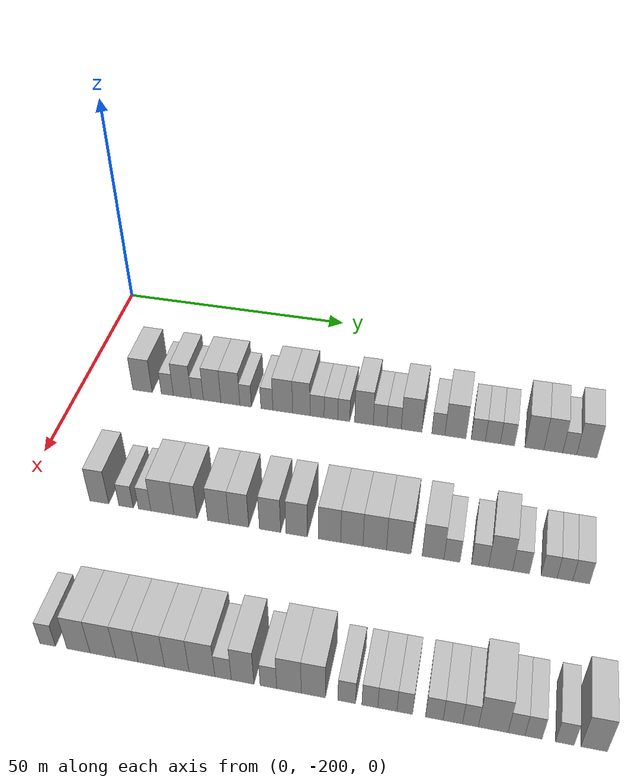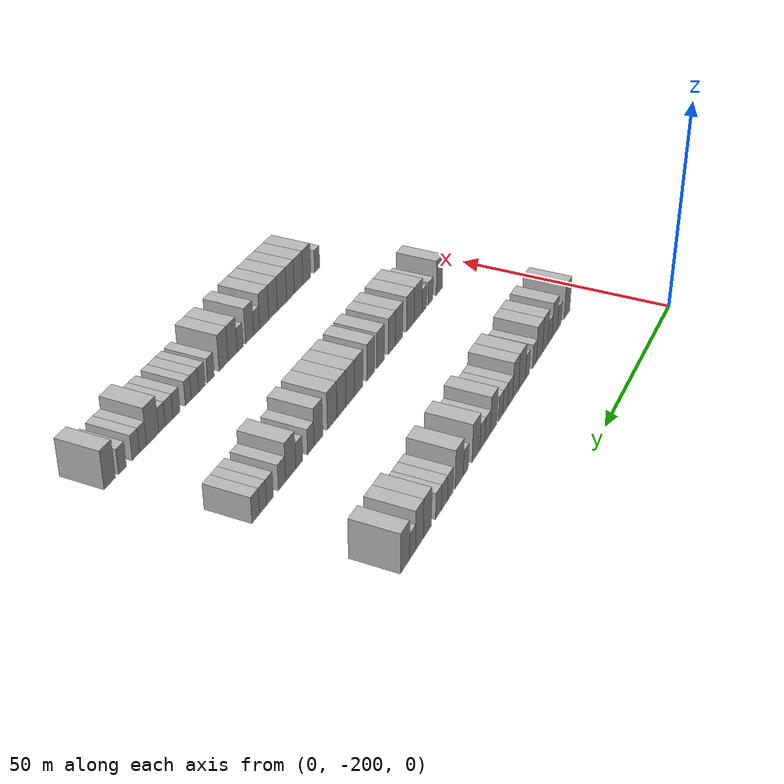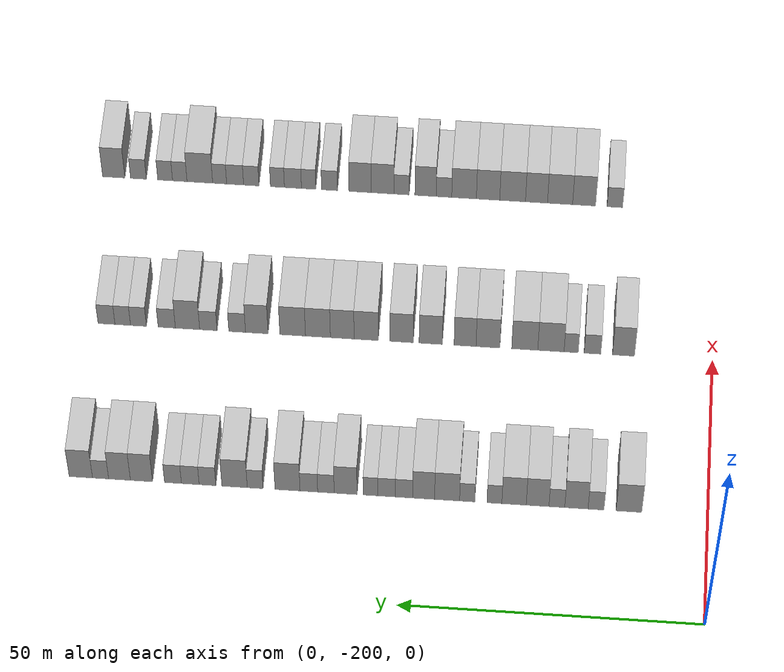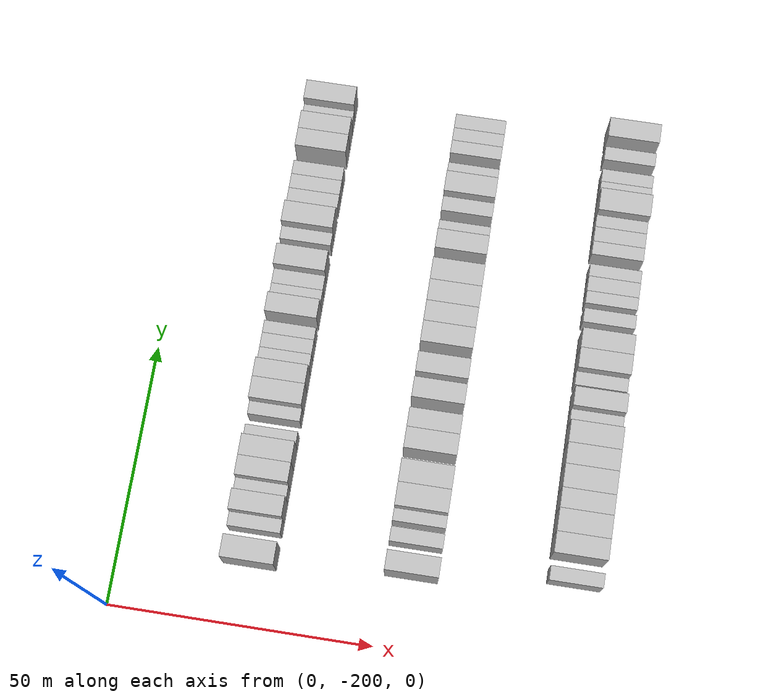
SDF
<sdf version="1.6">
 <world name="default">
  <model name="building_23">
   <static>1</static>
   <pose>25.0000 -186.9308 0 0.000000 0.000000 0.000000</pose>
   <link name="link">
    <pose>0 0 4.50 0 0 0</pose>
    <collision name="collision"><geometry><box><size>10.0000 4.2235 9.0000</size></box></geometry></collision>
    <visual name="visual">
     <cast_shadows>0</cast_shadows>
     <geometry><box><size>10.0000 4.2235 9.0000</size></box></geometry>
     <material>
      <script>
       <uri>model://HANNAS_wall/materials/scripts</uri>
       <uri>model://HANNAS_wall/materials/textures</uri>
       <name>vrc/HANNAS_wall</name>
      </script>
     </material>
    </visual>
   </link>
  </model>
  <model name="building_24">
   <static>1</static>
   <pose>25.0000 -181.5010 0 0.000000 0.000000 0.000000</pose>
   <link name="link">
    <pose>0 0 3.00 0 0 0</pose>
    <collision name="collision"><geometry><box><size>10.0000 2.6361 6.0000</size></box></geometry></collision>
    <visual name="visual">
     <cast_shadows>0</cast_shadows>
     <geometry><box><size>10.0000 2.6361 6.0000</size></box></geometry>
     <material>
      <script>
       <uri>model://HANNAS_wall/materials/scripts</uri>
       <uri>model://HANNAS_wall/materials/textures</uri>
       <name>vrc/HANNAS_wall</name>
      </script>
     </material>
    </visual>
   </link>
  </model>
  <model name="building_25">
   <static>1</static>
   <pose>25.0000 -178.2582 0 0.000000 0.000000 0.000000</pose>
   <link name="link">
    <pose>0 0 4.50 0 0 0</pose>
    <collision name="collision"><geometry><box><size>10.0000 3.8495 9.0000</size></box></geometry></collision>
    <visual name="visual">
     <cast_shadows>0</cast_shadows>
     <geometry><box><size>10.0000 3.8495 9.0000</size></box></geometry>
     <material>
      <script>
       <uri>model://HANNAS_wall/materials/scripts</uri>
       <uri>model://HANNAS_wall/materials/textures</uri>
       <name>vrc/HANNAS_wall</name>
      </script>
     </material>
    </visual>
   </link>
  </model>
  <model name="building_26">
   <static>1</static>
   <pose>25.0000 -175.0276 0 0.000000 0.000000 0.000000</pose>
   <link name="link">
    <pose>0 0 3.00 0 0 0</pose>
    <collision name="collision"><geometry><box><size>10.0000 2.6116 6.0000</size></box></geometry></collision>
    <visual name="visual">
     <cast_shadows>0</cast_shadows>
     <geometry><box><size>10.0000 2.6116 6.0000</size></box></geometry>
     <material>
      <script>
       <uri>model://HANNAS_wall/materials/scripts</uri>
       <uri>model://HANNAS_wall/materials/textures</uri>
       <name>vrc/HANNAS_wall</name>
      </script>
     </material>
    </visual>
   </link>
  </model>
  <model name="building_27">
   <static>1</static>
   <pose>25.0000 -171.8436 0 0.000000 0.000000 0.000000</pose>
   <link name="link">
    <pose>0 0 4.50 0 0 0</pose>
    <collision name="collision"><geometry><box><size>10.0000 3.7565 9.0000</size></box></geometry></collision>
    <visual name="visual">
     <cast_shadows>0</cast_shadows>
     <geometry><box><size>10.0000 3.7565 9.0000</size></box></geometry>
     <material>
      <script>
       <uri>model://HANNAS_wall/materials/scripts</uri>
       <uri>model://HANNAS_wall/materials/textures</uri>
       <name>vrc/HANNAS_wall</name>
      </script>
     </material>
    </visual>
   </link>
  </model>
  <model name="building_28">
   <static>1</static>
   <pose>25.0000 -167.9490 0 0.000000 0.000000 0.000000</pose>
   <link name="link">
    <pose>0 0 4.50 0 0 0</pose>
    <collision name="collision"><geometry><box><size>10.0000 4.0327 9.0000</size></box></geometry></collision>
    <visual name="visual">
     <cast_shadows>0</cast_shadows>
     <geometry><box><size>10.0000 4.0327 9.0000</size></box></geometry>
     <material>
      <script>
       <uri>model://HANNAS_wall/materials/scripts</uri>
       <uri>model://HANNAS_wall/materials/textures</uri>
       <name>vrc/HANNAS_wall</name>
      </script>
     </material>
    </visual>
   </link>
  </model>
  <model name="building_29">
   <static>1</static>
   <pose>25.0000 -164.7011 0 0.000000 0.000000 0.000000</pose>
   <link name="link">
    <pose>0 0 3.00 0 0 0</pose>
    <collision name="collision"><geometry><box><size>10.0000 2.4632 6.0000</size></box></geometry></collision>
    <visual name="visual">
     <cast_shadows>0</cast_shadows>
     <geometry><box><size>10.0000 2.4632 6.0000</size></box></geometry>
     <material>
      <script>
       <uri>model://HANNAS_wall/materials/scripts</uri>
       <uri>model://HANNAS_wall/materials/textures</uri>
       <name>vrc/HANNAS_wall</name>
      </script>
     </material>
    </visual>
   </link>
  </model>
  <model name="building_30">
   <static>1</static>
   <pose>25.0000 -160.2029 0 0.000000 0.000000 0.000000</pose>
   <link name="link">
    <pose>0 0 3.00 0 0 0</pose>
    <collision name="collision"><geometry><box><size>10.0000 2.5332 6.0000</size></box></geometry></collision>
    <visual name="visual">
     <cast_shadows>0</cast_shadows>
     <geometry><box><size>10.0000 2.5332 6.0000</size></box></geometry>
     <material>
      <script>
       <uri>model://HANNAS_wall/materials/scripts</uri>
       <uri>model://HANNAS_wall/materials/textures</uri>
       <name>vrc/HANNAS_wall</name>
      </script>
     </material>
    </visual>
   </link>
  </model>
  <model name="building_31">
   <static>1</static>
   <pose>25.0000 -156.8701 0 0.000000 0.000000 0.000000</pose>
   <link name="link">
    <pose>0 0 4.50 0 0 0</pose>
    <collision name="collision"><geometry><box><size>10.0000 4.1325 9.0000</size></box></geometry></collision>
    <visual name="visual">
     <cast_shadows>0</cast_shadows>
     <geometry><box><size>10.0000 4.1325 9.0000</size></box></geometry>
     <material>
      <script>
       <uri>model://HANNAS_wall/materials/scripts</uri>
       <uri>model://HANNAS_wall/materials/textures</uri>
       <name>vrc/HANNAS_wall</name>
      </script>
     </material>
    </visual>
   </link>
  </model>
  <model name="building_32">
   <static>1</static>
   <pose>25.0000 -152.9839 0 0.000000 0.000000 0.000000</pose>
   <link name="link">
    <pose>0 0 4.50 0 0 0</pose>
    <collision name="collision"><geometry><box><size>10.0000 3.6400 9.0000</size></box></geometry></collision>
    <visual name="visual">
     <cast_shadows>0</cast_shadows>
     <geometry><box><size>10.0000 3.6400 9.0000</size></box></geometry>
     <material>
      <script>
       <uri>model://HANNAS_wall/materials/scripts</uri>
       <uri>model://HANNAS_wall/materials/textures</uri>
       <name>vrc/HANNAS_wall</name>
      </script>
     </material>
    </visual>
   </link>
  </model>
  <model name="building_33">
   <static>1</static>
   <pose>25.0000 -149.7159 0 0.000000 0.000000 0.000000</pose>
   <link name="link">
    <pose>0 0 3.00 0 0 0</pose>
    <collision name="collision"><geometry><box><size>10.0000 2.8959 6.0000</size></box></geometry></collision>
    <visual name="visual">
     <cast_shadows>0</cast_shadows>
     <geometry><box><size>10.0000 2.8959 6.0000</size></box></geometry>
     <material>
      <script>
       <uri>model://HANNAS_wall/materials/scripts</uri>
       <uri>model://HANNAS_wall/materials/textures</uri>
       <name>vrc/HANNAS_wall</name>
      </script>
     </material>
    </visual>
   </link>
  </model>
  <model name="building_34">
   <static>1</static>
   <pose>25.0000 -146.8336 0 0.000000 0.000000 0.000000</pose>
   <link name="link">
    <pose>0 0 3.00 0 0 0</pose>
    <collision name="collision"><geometry><box><size>10.0000 2.8687 6.0000</size></box></geometry></collision>
    <visual name="visual">
     <cast_shadows>0</cast_shadows>
     <geometry><box><size>10.0000 2.8687 6.0000</size></box></geometry>
     <material>
      <script>
       <uri>model://HANNAS_wall/materials/scripts</uri>
       <uri>model://HANNAS_wall/materials/textures</uri>
       <name>vrc/HANNAS_wall</name>
      </script>
     </material>
    </visual>
   </link>
  </model>
  <model name="building_35">
   <static>1</static>
   <pose>25.0000 -144.1775 0 0.000000 0.000000 0.000000</pose>
   <link name="link">
    <pose>0 0 3.00 0 0 0</pose>
    <collision name="collision"><geometry><box><size>10.0000 2.4435 6.0000</size></box></geometry></collision>
    <visual name="visual">
     <cast_shadows>0</cast_shadows>
     <geometry><box><size>10.0000 2.4435 6.0000</size></box></geometry>
     <material>
      <script>
       <uri>model://HANNAS_wall/materials/scripts</uri>
       <uri>model://HANNAS_wall/materials/textures</uri>
       <name>vrc/HANNAS_wall</name>
      </script>
     </material>
    </visual>
   </link>
  </model>
  <model name="building_36">
   <static>1</static>
   <pose>25.0000 -140.0519 0 0.000000 0.000000 0.000000</pose>
   <link name="link">
    <pose>0 0 4.50 0 0 0</pose>
    <collision name="collision"><geometry><box><size>10.0000 3.8077 9.0000</size></box></geometry></collision>
    <visual name="visual">
     <cast_shadows>0</cast_shadows>
     <geometry><box><size>10.0000 3.8077 9.0000</size></box></geometry>
     <material>
      <script>
       <uri>model://HANNAS_wall/materials/scripts</uri>
       <uri>model://HANNAS_wall/materials/textures</uri>
       <name>vrc/HANNAS_wall</name>
      </script>
     </material>
    </visual>
   </link>
  </model>
  <model name="building_37">
   <static>1</static>
   <pose>25.0000 -136.7736 0 0.000000 0.000000 0.000000</pose>
   <link name="link">
    <pose>0 0 3.00 0 0 0</pose>
    <collision name="collision"><geometry><box><size>10.0000 2.7491 6.0000</size></box></geometry></collision>
    <visual name="visual">
     <cast_shadows>0</cast_shadows>
     <geometry><box><size>10.0000 2.7491 6.0000</size></box></geometry>
     <material>
      <script>
       <uri>model://HANNAS_wall/materials/scripts</uri>
       <uri>model://HANNAS_wall/materials/textures</uri>
       <name>vrc/HANNAS_wall</name>
      </script>
     </material>
    </visual>
   </link>
  </model>
  <model name="building_38">
   <static>1</static>
   <pose>25.0000 -133.9330 0 0.000000 0.000000 0.000000</pose>
   <link name="link">
    <pose>0 0 3.00 0 0 0</pose>
    <collision name="collision"><geometry><box><size>10.0000 2.9320 6.0000</size></box></geometry></collision>
    <visual name="visual">
     <cast_shadows>0</cast_shadows>
     <geometry><box><size>10.0000 2.9320 6.0000</size></box></geometry>
     <material>
      <script>
       <uri>model://HANNAS_wall/materials/scripts</uri>
       <uri>model://HANNAS_wall/materials/textures</uri>
       <name>vrc/HANNAS_wall</name>
      </script>
     </material>
    </visual>
   </link>
  </model>
  <model name="building_39">
   <static>1</static>
   <pose>25.0000 -130.3901 0 0.000000 0.000000 0.000000</pose>
   <link name="link">
    <pose>0 0 4.50 0 0 0</pose>
    <collision name="collision"><geometry><box><size>10.0000 4.1539 9.0000</size></box></geometry></collision>
    <visual name="visual">
     <cast_shadows>0</cast_shadows>
     <geometry><box><size>10.0000 4.1539 9.0000</size></box></geometry>
     <material>
      <script>
       <uri>model://HANNAS_wall/materials/scripts</uri>
       <uri>model://HANNAS_wall/materials/textures</uri>
       <name>vrc/HANNAS_wall</name>
      </script>
     </material>
    </visual>
   </link>
  </model>
  <model name="building_40">
   <static>1</static>
   <pose>25.0000 -125.0064 0 0.000000 0.000000 0.000000</pose>
   <link name="link">
    <pose>0 0 3.00 0 0 0</pose>
    <collision name="collision"><geometry><box><size>10.0000 2.6134 6.0000</size></box></geometry></collision>
    <visual name="visual">
     <cast_shadows>0</cast_shadows>
     <geometry><box><size>10.0000 2.6134 6.0000</size></box></geometry>
     <material>
      <script>
       <uri>model://HANNAS_wall/materials/scripts</uri>
       <uri>model://HANNAS_wall/materials/textures</uri>
       <name>vrc/HANNAS_wall</name>
      </script>
     </material>
    </visual>
   </link>
  </model>
  <model name="building_41">
   <static>1</static>
   <pose>25.0000 -121.5909 0 0.000000 0.000000 0.000000</pose>
   <link name="link">
    <pose>0 0 4.50 0 0 0</pose>
    <collision name="collision"><geometry><box><size>10.0000 4.2176 9.0000</size></box></geometry></collision>
    <visual name="visual">
     <cast_shadows>0</cast_shadows>
     <geometry><box><size>10.0000 4.2176 9.0000</size></box></geometry>
     <material>
      <script>
       <uri>model://HANNAS_wall/materials/scripts</uri>
       <uri>model://HANNAS_wall/materials/textures</uri>
       <name>vrc/HANNAS_wall</name>
      </script>
     </material>
    </visual>
   </link>
  </model>
  <model name="building_42">
   <static>1</static>
   <pose>25.0000 -117.0880 0 0.000000 0.000000 0.000000</pose>
   <link name="link">
    <pose>0 0 3.00 0 0 0</pose>
    <collision name="collision"><geometry><box><size>10.0000 2.7881 6.0000</size></box></geometry></collision>
    <visual name="visual">
     <cast_shadows>0</cast_shadows>
     <geometry><box><size>10.0000 2.7881 6.0000</size></box></geometry>
     <material>
      <script>
       <uri>model://HANNAS_wall/materials/scripts</uri>
       <uri>model://HANNAS_wall/materials/textures</uri>
       <name>vrc/HANNAS_wall</name>
      </script>
     </material>
    </visual>
   </link>
  </model>
  <model name="building_43">
   <static>1</static>
   <pose>25.0000 -114.2157 0 0.000000 0.000000 0.000000</pose>
   <link name="link">
    <pose>0 0 3.00 0 0 0</pose>
    <collision name="collision"><geometry><box><size>10.0000 2.9565 6.0000</size></box></geometry></collision>
    <visual name="visual">
     <cast_shadows>0</cast_shadows>
     <geometry><box><size>10.0000 2.9565 6.0000</size></box></geometry>
     <material>
      <script>
       <uri>model://HANNAS_wall/materials/scripts</uri>
       <uri>model://HANNAS_wall/materials/textures</uri>
       <name>vrc/HANNAS_wall</name>
      </script>
     </material>
    </visual>
   </link>
  </model>
  <model name="building_44">
   <static>1</static>
   <pose>25.0000 -111.3341 0 0.000000 0.000000 0.000000</pose>
   <link name="link">
    <pose>0 0 3.00 0 0 0</pose>
    <collision name="collision"><geometry><box><size>10.0000 2.8067 6.0000</size></box></geometry></collision>
    <visual name="visual">
     <cast_shadows>0</cast_shadows>
     <geometry><box><size>10.0000 2.8067 6.0000</size></box></geometry>
     <material>
      <script>
       <uri>model://HANNAS_wall/materials/scripts</uri>
       <uri>model://HANNAS_wall/materials/textures</uri>
       <name>vrc/HANNAS_wall</name>
      </script>
     </material>
    </visual>
   </link>
  </model>
  <model name="building_45">
   <static>1</static>
   <pose>25.0000 -106.0838 0 0.000000 0.000000 0.000000</pose>
   <link name="link">
    <pose>0 0 4.50 0 0 0</pose>
    <collision name="collision"><geometry><box><size>10.0000 3.6938 9.0000</size></box></geometry></collision>
    <visual name="visual">
     <cast_shadows>0</cast_shadows>
     <geometry><box><size>10.0000 3.6938 9.0000</size></box></geometry>
     <material>
      <script>
       <uri>model://HANNAS_wall/materials/scripts</uri>
       <uri>model://HANNAS_wall/materials/textures</uri>
       <name>vrc/HANNAS_wall</name>
      </script>
     </material>
    </visual>
   </link>
  </model>
  <model name="building_46">
   <static>1</static>
   <pose>25.0000 -102.4208 0 0.000000 0.000000 0.000000</pose>
   <link name="link">
    <pose>0 0 4.50 0 0 0</pose>
    <collision name="collision"><geometry><box><size>10.0000 3.6322 9.0000</size></box></geometry></collision>
    <visual name="visual">
     <cast_shadows>0</cast_shadows>
     <geometry><box><size>10.0000 3.6322 9.0000</size></box></geometry>
     <material>
      <script>
       <uri>model://HANNAS_wall/materials/scripts</uri>
       <uri>model://HANNAS_wall/materials/textures</uri>
       <name>vrc/HANNAS_wall</name>
      </script>
     </material>
    </visual>
   </link>
  </model>
  <model name="building_47">
   <static>1</static>
   <pose>25.0000 -99.2603 0 0.000000 0.000000 0.000000</pose>
   <link name="link">
    <pose>0 0 3.00 0 0 0</pose>
    <collision name="collision"><geometry><box><size>10.0000 2.6888 6.0000</size></box></geometry></collision>
    <visual name="visual">
     <cast_shadows>0</cast_shadows>
     <geometry><box><size>10.0000 2.6888 6.0000</size></box></geometry>
     <material>
      <script>
       <uri>model://HANNAS_wall/materials/scripts</uri>
       <uri>model://HANNAS_wall/materials/textures</uri>
       <name>vrc/HANNAS_wall</name>
      </script>
     </material>
    </visual>
   </link>
  </model>
  <model name="building_48">
   <static>1</static>
   <pose>25.0000 -95.9693 0 0.000000 0.000000 0.000000</pose>
   <link name="link">
    <pose>0 0 4.50 0 0 0</pose>
    <collision name="collision"><geometry><box><size>10.0000 3.8932 9.0000</size></box></geometry></collision>
    <visual name="visual">
     <cast_shadows>0</cast_shadows>
     <geometry><box><size>10.0000 3.8932 9.0000</size></box></geometry>
     <material>
      <script>
       <uri>model://HANNAS_wall/materials/scripts</uri>
       <uri>model://HANNAS_wall/materials/textures</uri>
       <name>vrc/HANNAS_wall</name>
      </script>
     </material>
    </visual>
   </link>
  </model>
  <model name="building_168">
   <static>1</static>
   <pose>55.0000 -184.9009 0 0.000000 0.000000 0.000000</pose>
   <link name="link">
    <pose>0 0 4.50 0 0 0</pose>
    <collision name="collision"><geometry><box><size>10.0000 3.7180 9.0000</size></box></geometry></collision>
    <visual name="visual">
     <cast_shadows>0</cast_shadows>
     <geometry><box><size>10.0000 3.7180 9.0000</size></box></geometry>
     <material>
      <script>
       <uri>model://HANNAS_wall/materials/scripts</uri>
       <uri>model://HANNAS_wall/materials/textures</uri>
       <name>vrc/HANNAS_wall</name>
      </script>
     </material>
    </visual>
   </link>
  </model>
  <model name="building_169">
   <static>1</static>
   <pose>55.0000 -179.6342 0 0.000000 0.000000 0.000000</pose>
   <link name="link">
    <pose>0 0 3.00 0 0 0</pose>
    <collision name="collision"><geometry><box><size>10.0000 2.8153 6.0000</size></box></geometry></collision>
    <visual name="visual">
     <cast_shadows>0</cast_shadows>
     <geometry><box><size>10.0000 2.8153 6.0000</size></box></geometry>
     <material>
      <script>
       <uri>model://HANNAS_wall/materials/scripts</uri>
       <uri>model://HANNAS_wall/materials/textures</uri>
       <name>vrc/HANNAS_wall</name>
      </script>
     </material>
    </visual>
   </link>
  </model>
  <model name="building_170">
   <static>1</static>
   <pose>55.0000 -176.0199 0 0.000000 0.000000 0.000000</pose>
   <link name="link">
    <pose>0 0 3.00 0 0 0</pose>
    <collision name="collision"><geometry><box><size>10.0000 2.4134 6.0000</size></box></geometry></collision>
    <visual name="visual">
     <cast_shadows>0</cast_shadows>
     <geometry><box><size>10.0000 2.4134 6.0000</size></box></geometry>
     <material>
      <script>
       <uri>model://HANNAS_wall/materials/scripts</uri>
       <uri>model://HANNAS_wall/materials/textures</uri>
       <name>vrc/HANNAS_wall</name>
      </script>
     </material>
    </visual>
   </link>
  </model>
  <model name="building_171">
   <static>1</static>
   <pose>55.0000 -172.5853 0 0.000000 0.000000 0.000000</pose>
   <link name="link">
    <pose>0 0 4.50 0 0 0</pose>
    <collision name="collision"><geometry><box><size>10.0000 4.4558 9.0000</size></box></geometry></collision>
    <visual name="visual">
     <cast_shadows>0</cast_shadows>
     <geometry><box><size>10.0000 4.4558 9.0000</size></box></geometry>
     <material>
      <script>
       <uri>model://HANNAS_wall/materials/scripts</uri>
       <uri>model://HANNAS_wall/materials/textures</uri>
       <name>vrc/HANNAS_wall</name>
      </script>
     </material>
    </visual>
   </link>
  </model>
  <model name="building_172">
   <static>1</static>
   <pose>55.0000 -168.1446 0 0.000000 0.000000 0.000000</pose>
   <link name="link">
    <pose>0 0 4.50 0 0 0</pose>
    <collision name="collision"><geometry><box><size>10.0000 4.4255 9.0000</size></box></geometry></collision>
    <visual name="visual">
     <cast_shadows>0</cast_shadows>
     <geometry><box><size>10.0000 4.4255 9.0000</size></box></geometry>
     <material>
      <script>
       <uri>model://HANNAS_wall/materials/scripts</uri>
       <uri>model://HANNAS_wall/materials/textures</uri>
       <name>vrc/HANNAS_wall</name>
      </script>
     </material>
    </visual>
   </link>
  </model>
  <model name="building_173">
   <static>1</static>
   <pose>55.0000 -161.9025 0 0.000000 0.000000 0.000000</pose>
   <link name="link">
    <pose>0 0 4.50 0 0 0</pose>
    <collision name="collision"><geometry><box><size>10.0000 4.0588 9.0000</size></box></geometry></collision>
    <visual name="visual">
     <cast_shadows>0</cast_shadows>
     <geometry><box><size>10.0000 4.0588 9.0000</size></box></geometry>
     <material>
      <script>
       <uri>model://HANNAS_wall/materials/scripts</uri>
       <uri>model://HANNAS_wall/materials/textures</uri>
       <name>vrc/HANNAS_wall</name>
      </script>
     </material>
    </visual>
   </link>
  </model>
  <model name="building_174">
   <static>1</static>
   <pose>55.0000 -158.0088 0 0.000000 0.000000 0.000000</pose>
   <link name="link">
    <pose>0 0 4.50 0 0 0</pose>
    <collision name="collision"><geometry><box><size>10.0000 3.7285 9.0000</size></box></geometry></collision>
    <visual name="visual">
     <cast_shadows>0</cast_shadows>
     <geometry><box><size>10.0000 3.7285 9.0000</size></box></geometry>
     <material>
      <script>
       <uri>model://HANNAS_wall/materials/scripts</uri>
       <uri>model://HANNAS_wall/materials/textures</uri>
       <name>vrc/HANNAS_wall</name>
      </script>
     </material>
    </visual>
   </link>
  </model>
  <model name="building_175">
   <static>1</static>
   <pose>55.0000 -152.1687 0 0.000000 0.000000 0.000000</pose>
   <link name="link">
    <pose>0 0 4.50 0 0 0</pose>
    <collision name="collision"><geometry><box><size>10.0000 3.9518 9.0000</size></box></geometry></collision>
    <visual name="visual">
     <cast_shadows>0</cast_shadows>
     <geometry><box><size>10.0000 3.9518 9.0000</size></box></geometry>
     <material>
      <script>
       <uri>model://HANNAS_wall/materials/scripts</uri>
       <uri>model://HANNAS_wall/materials/textures</uri>
       <name>vrc/HANNAS_wall</name>
      </script>
     </material>
    </visual>
   </link>
  </model>
  <model name="building_176">
   <static>1</static>
   <pose>55.0000 -147.2161 0 0.000000 0.000000 0.000000</pose>
   <link name="link">
    <pose>0 0 4.50 0 0 0</pose>
    <collision name="collision"><geometry><box><size>10.0000 3.9533 9.0000</size></box></geometry></collision>
    <visual name="visual">
     <cast_shadows>0</cast_shadows>
     <geometry><box><size>10.0000 3.9533 9.0000</size></box></geometry>
     <material>
      <script>
       <uri>model://HANNAS_wall/materials/scripts</uri>
       <uri>model://HANNAS_wall/materials/textures</uri>
       <name>vrc/HANNAS_wall</name>
      </script>
     </material>
    </visual>
   </link>
  </model>
  <model name="building_177">
   <static>1</static>
   <pose>55.0000 -141.1859 0 0.000000 0.000000 0.000000</pose>
   <link name="link">
    <pose>0 0 4.50 0 0 0</pose>
    <collision name="collision"><geometry><box><size>10.0000 4.1070 9.0000</size></box></geometry></collision>
    <visual name="visual">
     <cast_shadows>0</cast_shadows>
     <geometry><box><size>10.0000 4.1070 9.0000</size></box></geometry>
     <material>
      <script>
       <uri>model://HANNAS_wall/materials/scripts</uri>
       <uri>model://HANNAS_wall/materials/textures</uri>
       <name>vrc/HANNAS_wall</name>
      </script>
     </material>
    </visual>
   </link>
  </model>
  <model name="building_178">
   <static>1</static>
   <pose>55.0000 -137.1049 0 0.000000 0.000000 0.000000</pose>
   <link name="link">
    <pose>0 0 4.50 0 0 0</pose>
    <collision name="collision"><geometry><box><size>10.0000 4.0550 9.0000</size></box></geometry></collision>
    <visual name="visual">
     <cast_shadows>0</cast_shadows>
     <geometry><box><size>10.0000 4.0550 9.0000</size></box></geometry>
     <material>
      <script>
       <uri>model://HANNAS_wall/materials/scripts</uri>
       <uri>model://HANNAS_wall/materials/textures</uri>
       <name>vrc/HANNAS_wall</name>
      </script>
     </material>
    </visual>
   </link>
  </model>
  <model name="building_179">
   <static>1</static>
   <pose>55.0000 -132.9546 0 0.000000 0.000000 0.000000</pose>
   <link name="link">
    <pose>0 0 4.50 0 0 0</pose>
    <collision name="collision"><geometry><box><size>10.0000 4.2458 9.0000</size></box></geometry></collision>
    <visual name="visual">
     <cast_shadows>0</cast_shadows>
     <geometry><box><size>10.0000 4.2458 9.0000</size></box></geometry>
     <material>
      <script>
       <uri>model://HANNAS_wall/materials/scripts</uri>
       <uri>model://HANNAS_wall/materials/textures</uri>
       <name>vrc/HANNAS_wall</name>
      </script>
     </material>
    </visual>
   </link>
  </model>
  <model name="building_180">
   <static>1</static>
   <pose>55.0000 -128.6452 0 0.000000 0.000000 0.000000</pose>
   <link name="link">
    <pose>0 0 4.50 0 0 0</pose>
    <collision name="collision"><geometry><box><size>10.0000 4.3731 9.0000</size></box></geometry></collision>
    <visual name="visual">
     <cast_shadows>0</cast_shadows>
     <geometry><box><size>10.0000 4.3731 9.0000</size></box></geometry>
     <material>
      <script>
       <uri>model://HANNAS_wall/materials/scripts</uri>
       <uri>model://HANNAS_wall/materials/textures</uri>
       <name>vrc/HANNAS_wall</name>
      </script>
     </material>
    </visual>
   </link>
  </model>
  <model name="building_181">
   <static>1</static>
   <pose>55.0000 -122.5282 0 0.000000 0.000000 0.000000</pose>
   <link name="link">
    <pose>0 0 4.50 0 0 0</pose>
    <collision name="collision"><geometry><box><size>10.0000 3.8609 9.0000</size></box></geometry></collision>
    <visual name="visual">
     <cast_shadows>0</cast_shadows>
     <geometry><box><size>10.0000 3.8609 9.0000</size></box></geometry>
     <material>
      <script>
       <uri>model://HANNAS_wall/materials/scripts</uri>
       <uri>model://HANNAS_wall/materials/textures</uri>
       <name>vrc/HANNAS_wall</name>
      </script>
     </material>
    </visual>
   </link>
  </model>
  <model name="building_182">
   <static>1</static>
   <pose>55.0000 -119.1720 0 0.000000 0.000000 0.000000</pose>
   <link name="link">
    <pose>0 0 3.00 0 0 0</pose>
    <collision name="collision"><geometry><box><size>10.0000 2.8513 6.0000</size></box></geometry></collision>
    <visual name="visual">
     <cast_shadows>0</cast_shadows>
     <geometry><box><size>10.0000 2.8513 6.0000</size></box></geometry>
     <material>
      <script>
       <uri>model://HANNAS_wall/materials/scripts</uri>
       <uri>model://HANNAS_wall/materials/textures</uri>
       <name>vrc/HANNAS_wall</name>
      </script>
     </material>
    </visual>
   </link>
  </model>
  <model name="building_183">
   <static>1</static>
   <pose>55.0000 -114.2584 0 0.000000 0.000000 0.000000</pose>
   <link name="link">
    <pose>0 0 3.00 0 0 0</pose>
    <collision name="collision"><geometry><box><size>10.0000 2.9760 6.0000</size></box></geometry></collision>
    <visual name="visual">
     <cast_shadows>0</cast_shadows>
     <geometry><box><size>10.0000 2.9760 6.0000</size></box></geometry>
     <material>
      <script>
       <uri>model://HANNAS_wall/materials/scripts</uri>
       <uri>model://HANNAS_wall/materials/textures</uri>
       <name>vrc/HANNAS_wall</name>
      </script>
     </material>
    </visual>
   </link>
  </model>
  <model name="building_184">
   <static>1</static>
   <pose>55.0000 -110.6900 0 0.000000 0.000000 0.000000</pose>
   <link name="link">
    <pose>0 0 4.50 0 0 0</pose>
    <collision name="collision"><geometry><box><size>10.0000 4.1608 9.0000</size></box></geometry></collision>
    <visual name="visual">
     <cast_shadows>0</cast_shadows>
     <geometry><box><size>10.0000 4.1608 9.0000</size></box></geometry>
     <material>
      <script>
       <uri>model://HANNAS_wall/materials/scripts</uri>
       <uri>model://HANNAS_wall/materials/textures</uri>
       <name>vrc/HANNAS_wall</name>
      </script>
     </material>
    </visual>
   </link>
  </model>
  <model name="building_185">
   <static>1</static>
   <pose>55.0000 -107.1356 0 0.000000 0.000000 0.000000</pose>
   <link name="link">
    <pose>0 0 3.00 0 0 0</pose>
    <collision name="collision"><geometry><box><size>10.0000 2.9480 6.0000</size></box></geometry></collision>
    <visual name="visual">
     <cast_shadows>0</cast_shadows>
     <geometry><box><size>10.0000 2.9480 6.0000</size></box></geometry>
     <material>
      <script>
       <uri>model://HANNAS_wall/materials/scripts</uri>
       <uri>model://HANNAS_wall/materials/textures</uri>
       <name>vrc/HANNAS_wall</name>
      </script>
     </material>
    </visual>
   </link>
  </model>
  <model name="building_186">
   <static>1</static>
   <pose>55.0000 -102.2975 0 0.000000 0.000000 0.000000</pose>
   <link name="link">
    <pose>0 0 3.00 0 0 0</pose>
    <collision name="collision"><geometry><box><size>10.0000 2.7281 6.0000</size></box></geometry></collision>
    <visual name="visual">
     <cast_shadows>0</cast_shadows>
     <geometry><box><size>10.0000 2.7281 6.0000</size></box></geometry>
     <material>
      <script>
       <uri>model://HANNAS_wall/materials/scripts</uri>
       <uri>model://HANNAS_wall/materials/textures</uri>
       <name>vrc/HANNAS_wall</name>
      </script>
     </material>
    </visual>
   </link>
  </model>
  <model name="building_187">
   <static>1</static>
   <pose>55.0000 -99.6029 0 0.000000 0.000000 0.000000</pose>
   <link name="link">
    <pose>0 0 3.00 0 0 0</pose>
    <collision name="collision"><geometry><box><size>10.0000 2.6610 6.0000</size></box></geometry></collision>
    <visual name="visual">
     <cast_shadows>0</cast_shadows>
     <geometry><box><size>10.0000 2.6610 6.0000</size></box></geometry>
     <material>
      <script>
       <uri>model://HANNAS_wall/materials/scripts</uri>
       <uri>model://HANNAS_wall/materials/textures</uri>
       <name>vrc/HANNAS_wall</name>
      </script>
     </material>
    </visual>
   </link>
  </model>
  <model name="building_188">
   <static>1</static>
   <pose>55.0000 -96.8229 0 0.000000 0.000000 0.000000</pose>
   <link name="link">
    <pose>0 0 3.00 0 0 0</pose>
    <collision name="collision"><geometry><box><size>10.0000 2.8990 6.0000</size></box></geometry></collision>
    <visual name="visual">
     <cast_shadows>0</cast_shadows>
     <geometry><box><size>10.0000 2.8990 6.0000</size></box></geometry>
     <material>
      <script>
       <uri>model://HANNAS_wall/materials/scripts</uri>
       <uri>model://HANNAS_wall/materials/textures</uri>
       <name>vrc/HANNAS_wall</name>
      </script>
     </material>
    </visual>
   </link>
  </model>
  <model name="building_304">
   <static>1</static>
   <pose>85.0000 -182.2500 0 0.000000 0.000000 0.000000</pose>
   <link name="link">
    <pose>0 0 3.00 0 0 0</pose>
    <collision name="collision"><geometry><box><size>10.0000 2.7048 6.0000</size></box></geometry></collision>
    <visual name="visual">
     <cast_shadows>0</cast_shadows>
     <geometry><box><size>10.0000 2.7048 6.0000</size></box></geometry>
     <material>
      <script>
       <uri>model://HANNAS_wall/materials/scripts</uri>
       <uri>model://HANNAS_wall/materials/textures</uri>
       <name>vrc/HANNAS_wall</name>
      </script>
     </material>
    </visual>
   </link>
  </model>
  <model name="building_305">
   <static>1</static>
   <pose>85.0000 -176.8969 0 0.000000 0.000000 0.000000</pose>
   <link name="link">
    <pose>0 0 4.50 0 0 0</pose>
    <collision name="collision"><geometry><box><size>10.0000 4.0013 9.0000</size></box></geometry></collision>
    <visual name="visual">
     <cast_shadows>0</cast_shadows>
     <geometry><box><size>10.0000 4.0013 9.0000</size></box></geometry>
     <material>
      <script>
       <uri>model://HANNAS_wall/materials/scripts</uri>
       <uri>model://HANNAS_wall/materials/textures</uri>
       <name>vrc/HANNAS_wall</name>
      </script>
     </material>
    </visual>
   </link>
  </model>
  <model name="building_306">
   <static>1</static>
   <pose>85.0000 -172.7102 0 0.000000 0.000000 0.000000</pose>
   <link name="link">
    <pose>0 0 4.50 0 0 0</pose>
    <collision name="collision"><geometry><box><size>10.0000 4.3721 9.0000</size></box></geometry></collision>
    <visual name="visual">
     <cast_shadows>0</cast_shadows>
     <geometry><box><size>10.0000 4.3721 9.0000</size></box></geometry>
     <material>
      <script>
       <uri>model://HANNAS_wall/materials/scripts</uri>
       <uri>model://HANNAS_wall/materials/textures</uri>
       <name>vrc/HANNAS_wall</name>
      </script>
     </material>
    </visual>
   </link>
  </model>
  <model name="building_307">
   <static>1</static>
   <pose>85.0000 -168.6088 0 0.000000 0.000000 0.000000</pose>
   <link name="link">
    <pose>0 0 4.50 0 0 0</pose>
    <collision name="collision"><geometry><box><size>10.0000 3.8306 9.0000</size></box></geometry></collision>
    <visual name="visual">
     <cast_shadows>0</cast_shadows>
     <geometry><box><size>10.0000 3.8306 9.0000</size></box></geometry>
     <material>
      <script>
       <uri>model://HANNAS_wall/materials/scripts</uri>
       <uri>model://HANNAS_wall/materials/textures</uri>
       <name>vrc/HANNAS_wall</name>
      </script>
     </material>
    </visual>
   </link>
  </model>
  <model name="building_308">
   <static>1</static>
   <pose>85.0000 -164.4525 0 0.000000 0.000000 0.000000</pose>
   <link name="link">
    <pose>0 0 4.50 0 0 0</pose>
    <collision name="collision"><geometry><box><size>10.0000 4.4821 9.0000</size></box></geometry></collision>
    <visual name="visual">
     <cast_shadows>0</cast_shadows>
     <geometry><box><size>10.0000 4.4821 9.0000</size></box></geometry>
     <material>
      <script>
       <uri>model://HANNAS_wall/materials/scripts</uri>
       <uri>model://HANNAS_wall/materials/textures</uri>
       <name>vrc/HANNAS_wall</name>
      </script>
     </material>
    </visual>
   </link>
  </model>
  <model name="building_309">
   <static>1</static>
   <pose>85.0000 -160.1771 0 0.000000 0.000000 0.000000</pose>
   <link name="link">
    <pose>0 0 4.50 0 0 0</pose>
    <collision name="collision"><geometry><box><size>10.0000 4.0688 9.0000</size></box></geometry></collision>
    <visual name="visual">
     <cast_shadows>0</cast_shadows>
     <geometry><box><size>10.0000 4.0688 9.0000</size></box></geometry>
     <material>
      <script>
       <uri>model://HANNAS_wall/materials/scripts</uri>
       <uri>model://HANNAS_wall/materials/textures</uri>
       <name>vrc/HANNAS_wall</name>
      </script>
     </material>
    </visual>
   </link>
  </model>
  <model name="building_310">
   <static>1</static>
   <pose>85.0000 -155.9930 0 0.000000 0.000000 0.000000</pose>
   <link name="link">
    <pose>0 0 4.50 0 0 0</pose>
    <collision name="collision"><geometry><box><size>10.0000 4.2994 9.0000</size></box></geometry></collision>
    <visual name="visual">
     <cast_shadows>0</cast_shadows>
     <geometry><box><size>10.0000 4.2994 9.0000</size></box></geometry>
     <material>
      <script>
       <uri>model://HANNAS_wall/materials/scripts</uri>
       <uri>model://HANNAS_wall/materials/textures</uri>
       <name>vrc/HANNAS_wall</name>
      </script>
     </material>
    </visual>
   </link>
  </model>
  <model name="building_311">
   <static>1</static>
   <pose>85.0000 -152.4867 0 0.000000 0.000000 0.000000</pose>
   <link name="link">
    <pose>0 0 3.00 0 0 0</pose>
    <collision name="collision"><geometry><box><size>10.0000 2.7131 6.0000</size></box></geometry></collision>
    <visual name="visual">
     <cast_shadows>0</cast_shadows>
     <geometry><box><size>10.0000 2.7131 6.0000</size></box></geometry>
     <material>
      <script>
       <uri>model://HANNAS_wall/materials/scripts</uri>
       <uri>model://HANNAS_wall/materials/textures</uri>
       <name>vrc/HANNAS_wall</name>
      </script>
     </material>
    </visual>
   </link>
  </model>
  <model name="building_312">
   <static>1</static>
   <pose>85.0000 -149.2737 0 0.000000 0.000000 0.000000</pose>
   <link name="link">
    <pose>0 0 4.50 0 0 0</pose>
    <collision name="collision"><geometry><box><size>10.0000 3.7129 9.0000</size></box></geometry></collision>
    <visual name="visual">
     <cast_shadows>0</cast_shadows>
     <geometry><box><size>10.0000 3.7129 9.0000</size></box></geometry>
     <material>
      <script>
       <uri>model://HANNAS_wall/materials/scripts</uri>
       <uri>model://HANNAS_wall/materials/textures</uri>
       <name>vrc/HANNAS_wall</name>
      </script>
     </material>
    </visual>
   </link>
  </model>
  <model name="building_313">
   <static>1</static>
   <pose>85.0000 -145.0737 0 0.000000 0.000000 0.000000</pose>
   <link name="link">
    <pose>0 0 3.00 0 0 0</pose>
    <collision name="collision"><geometry><box><size>10.0000 2.6870 6.0000</size></box></geometry></collision>
    <visual name="visual">
     <cast_shadows>0</cast_shadows>
     <geometry><box><size>10.0000 2.6870 6.0000</size></box></geometry>
     <material>
      <script>
       <uri>model://HANNAS_wall/materials/scripts</uri>
       <uri>model://HANNAS_wall/materials/textures</uri>
       <name>vrc/HANNAS_wall</name>
      </script>
     </material>
    </visual>
   </link>
  </model>
  <model name="building_314">
   <static>1</static>
   <pose>85.0000 -141.7472 0 0.000000 0.000000 0.000000</pose>
   <link name="link">
    <pose>0 0 4.50 0 0 0</pose>
    <collision name="collision"><geometry><box><size>10.0000 3.9660 9.0000</size></box></geometry></collision>
    <visual name="visual">
     <cast_shadows>0</cast_shadows>
     <geometry><box><size>10.0000 3.9660 9.0000</size></box></geometry>
     <material>
      <script>
       <uri>model://HANNAS_wall/materials/scripts</uri>
       <uri>model://HANNAS_wall/materials/textures</uri>
       <name>vrc/HANNAS_wall</name>
      </script>
     </material>
    </visual>
   </link>
  </model>
  <model name="building_315">
   <static>1</static>
   <pose>85.0000 -137.8326 0 0.000000 0.000000 0.000000</pose>
   <link name="link">
    <pose>0 0 4.50 0 0 0</pose>
    <collision name="collision"><geometry><box><size>10.0000 3.8633 9.0000</size></box></geometry></collision>
    <visual name="visual">
     <cast_shadows>0</cast_shadows>
     <geometry><box><size>10.0000 3.8633 9.0000</size></box></geometry>
     <material>
      <script>
       <uri>model://HANNAS_wall/materials/scripts</uri>
       <uri>model://HANNAS_wall/materials/textures</uri>
       <name>vrc/HANNAS_wall</name>
      </script>
     </material>
    </visual>
   </link>
  </model>
  <model name="building_316">
   <static>1</static>
   <pose>85.0000 -132.5022 0 0.000000 0.000000 0.000000</pose>
   <link name="link">
    <pose>0 0 3.00 0 0 0</pose>
    <collision name="collision"><geometry><box><size>10.0000 2.7974 6.0000</size></box></geometry></collision>
    <visual name="visual">
     <cast_shadows>0</cast_shadows>
     <geometry><box><size>10.0000 2.7974 6.0000</size></box></geometry>
     <material>
      <script>
       <uri>model://HANNAS_wall/materials/scripts</uri>
       <uri>model://HANNAS_wall/materials/textures</uri>
       <name>vrc/HANNAS_wall</name>
      </script>
     </material>
    </visual>
   </link>
  </model>
  <model name="building_317">
   <static>1</static>
   <pose>85.0000 -128.8433 0 0.000000 0.000000 0.000000</pose>
   <link name="link">
    <pose>0 0 3.00 0 0 0</pose>
    <collision name="collision"><geometry><box><size>10.0000 2.5204 6.0000</size></box></geometry></collision>
    <visual name="visual">
     <cast_shadows>0</cast_shadows>
     <geometry><box><size>10.0000 2.5204 6.0000</size></box></geometry>
     <material>
      <script>
       <uri>model://HANNAS_wall/materials/scripts</uri>
       <uri>model://HANNAS_wall/materials/textures</uri>
       <name>vrc/HANNAS_wall</name>
      </script>
     </material>
    </visual>
   </link>
  </model>
  <model name="building_318">
   <static>1</static>
   <pose>85.0000 -126.0908 0 0.000000 0.000000 0.000000</pose>
   <link name="link">
    <pose>0 0 3.00 0 0 0</pose>
    <collision name="collision"><geometry><box><size>10.0000 2.9846 6.0000</size></box></geometry></collision>
    <visual name="visual">
     <cast_shadows>0</cast_shadows>
     <geometry><box><size>10.0000 2.9846 6.0000</size></box></geometry>
     <material>
      <script>
       <uri>model://HANNAS_wall/materials/scripts</uri>
       <uri>model://HANNAS_wall/materials/textures</uri>
       <name>vrc/HANNAS_wall</name>
      </script>
     </material>
    </visual>
   </link>
  </model>
  <model name="building_319">
   <static>1</static>
   <pose>85.0000 -123.3764 0 0.000000 0.000000 0.000000</pose>
   <link name="link">
    <pose>0 0 3.00 0 0 0</pose>
    <collision name="collision"><geometry><box><size>10.0000 2.4443 6.0000</size></box></geometry></collision>
    <visual name="visual">
     <cast_shadows>0</cast_shadows>
     <geometry><box><size>10.0000 2.4443 6.0000</size></box></geometry>
     <material>
      <script>
       <uri>model://HANNAS_wall/materials/scripts</uri>
       <uri>model://HANNAS_wall/materials/textures</uri>
       <name>vrc/HANNAS_wall</name>
      </script>
     </material>
    </visual>
   </link>
  </model>
  <model name="building_320">
   <static>1</static>
   <pose>85.0000 -118.7967 0 0.000000 0.000000 0.000000</pose>
   <link name="link">
    <pose>0 0 3.00 0 0 0</pose>
    <collision name="collision"><geometry><box><size>10.0000 2.7151 6.0000</size></box></geometry></collision>
    <visual name="visual">
     <cast_shadows>0</cast_shadows>
     <geometry><box><size>10.0000 2.7151 6.0000</size></box></geometry>
     <material>
      <script>
       <uri>model://HANNAS_wall/materials/scripts</uri>
       <uri>model://HANNAS_wall/materials/textures</uri>
       <name>vrc/HANNAS_wall</name>
      </script>
     </material>
    </visual>
   </link>
  </model>
  <model name="building_321">
   <static>1</static>
   <pose>85.0000 -115.9563 0 0.000000 0.000000 0.000000</pose>
   <link name="link">
    <pose>0 0 3.00 0 0 0</pose>
    <collision name="collision"><geometry><box><size>10.0000 2.9656 6.0000</size></box></geometry></collision>
    <visual name="visual">
     <cast_shadows>0</cast_shadows>
     <geometry><box><size>10.0000 2.9656 6.0000</size></box></geometry>
     <material>
      <script>
       <uri>model://HANNAS_wall/materials/scripts</uri>
       <uri>model://HANNAS_wall/materials/textures</uri>
       <name>vrc/HANNAS_wall</name>
      </script>
     </material>
    </visual>
   </link>
  </model>
  <model name="building_322">
   <static>1</static>
   <pose>85.0000 -113.2488 0 0.000000 0.000000 0.000000</pose>
   <link name="link">
    <pose>0 0 3.00 0 0 0</pose>
    <collision name="collision"><geometry><box><size>10.0000 2.4495 6.0000</size></box></geometry></collision>
    <visual name="visual">
     <cast_shadows>0</cast_shadows>
     <geometry><box><size>10.0000 2.4495 6.0000</size></box></geometry>
     <material>
      <script>
       <uri>model://HANNAS_wall/materials/scripts</uri>
       <uri>model://HANNAS_wall/materials/textures</uri>
       <name>vrc/HANNAS_wall</name>
      </script>
     </material>
    </visual>
   </link>
  </model>
  <model name="building_323">
   <static>1</static>
   <pose>85.0000 -109.7757 0 0.000000 0.000000 0.000000</pose>
   <link name="link">
    <pose>0 0 4.50 0 0 0</pose>
    <collision name="collision"><geometry><box><size>10.0000 4.4966 9.0000</size></box></geometry></collision>
    <visual name="visual">
     <cast_shadows>0</cast_shadows>
     <geometry><box><size>10.0000 4.4966 9.0000</size></box></geometry>
     <material>
      <script>
       <uri>model://HANNAS_wall/materials/scripts</uri>
       <uri>model://HANNAS_wall/materials/textures</uri>
       <name>vrc/HANNAS_wall</name>
      </script>
     </material>
    </visual>
   </link>
  </model>
  <model name="building_324">
   <static>1</static>
   <pose>85.0000 -106.2583 0 0.000000 0.000000 0.000000</pose>
   <link name="link">
    <pose>0 0 3.00 0 0 0</pose>
    <collision name="collision"><geometry><box><size>10.0000 2.5382 6.0000</size></box></geometry></collision>
    <visual name="visual">
     <cast_shadows>0</cast_shadows>
     <geometry><box><size>10.0000 2.5382 6.0000</size></box></geometry>
     <material>
      <script>
       <uri>model://HANNAS_wall/materials/scripts</uri>
       <uri>model://HANNAS_wall/materials/textures</uri>
       <name>vrc/HANNAS_wall</name>
      </script>
     </material>
    </visual>
   </link>
  </model>
  <model name="building_325">
   <static>1</static>
   <pose>85.0000 -103.6929 0 0.000000 0.000000 0.000000</pose>
   <link name="link">
    <pose>0 0 3.00 0 0 0</pose>
    <collision name="collision"><geometry><box><size>10.0000 2.5926 6.0000</size></box></geometry></collision>
    <visual name="visual">
     <cast_shadows>0</cast_shadows>
     <geometry><box><size>10.0000 2.5926 6.0000</size></box></geometry>
     <material>
      <script>
       <uri>model://HANNAS_wall/materials/scripts</uri>
       <uri>model://HANNAS_wall/materials/textures</uri>
       <name>vrc/HANNAS_wall</name>
      </script>
     </material>
    </visual>
   </link>
  </model>
  <model name="building_326">
   <static>1</static>
   <pose>85.0000 -99.0099 0 0.000000 0.000000 0.000000</pose>
   <link name="link">
    <pose>0 0 3.00 0 0 0</pose>
    <collision name="collision"><geometry><box><size>10.0000 2.7734 6.0000</size></box></geometry></collision>
    <visual name="visual">
     <cast_shadows>0</cast_shadows>
     <geometry><box><size>10.0000 2.7734 6.0000</size></box></geometry>
     <material>
      <script>
       <uri>model://HANNAS_wall/materials/scripts</uri>
       <uri>model://HANNAS_wall/materials/textures</uri>
       <name>vrc/HANNAS_wall</name>
      </script>
     </material>
    </visual>
   </link>
  </model>
  <model name="building_327">
   <static>1</static>
   <pose>85.0000 -94.6733 0 0.000000 0.000000 0.000000</pose>
   <link name="link">
    <pose>0 0 4.50 0 0 0</pose>
    <collision name="collision"><geometry><box><size>10.0000 3.9000 9.0000</size></box></geometry></collision>
    <visual name="visual">
     <cast_shadows>0</cast_shadows>
     <geometry><box><size>10.0000 3.9000 9.0000</size></box></geometry>
     <material>
      <script>
       <uri>model://HANNAS_wall/materials/scripts</uri>
       <uri>model://HANNAS_wall/materials/textures</uri>
       <name>vrc/HANNAS_wall</name>
      </script>
     </material>
    </visual>
   </link>
  </model>
 </world>
</sdf>
